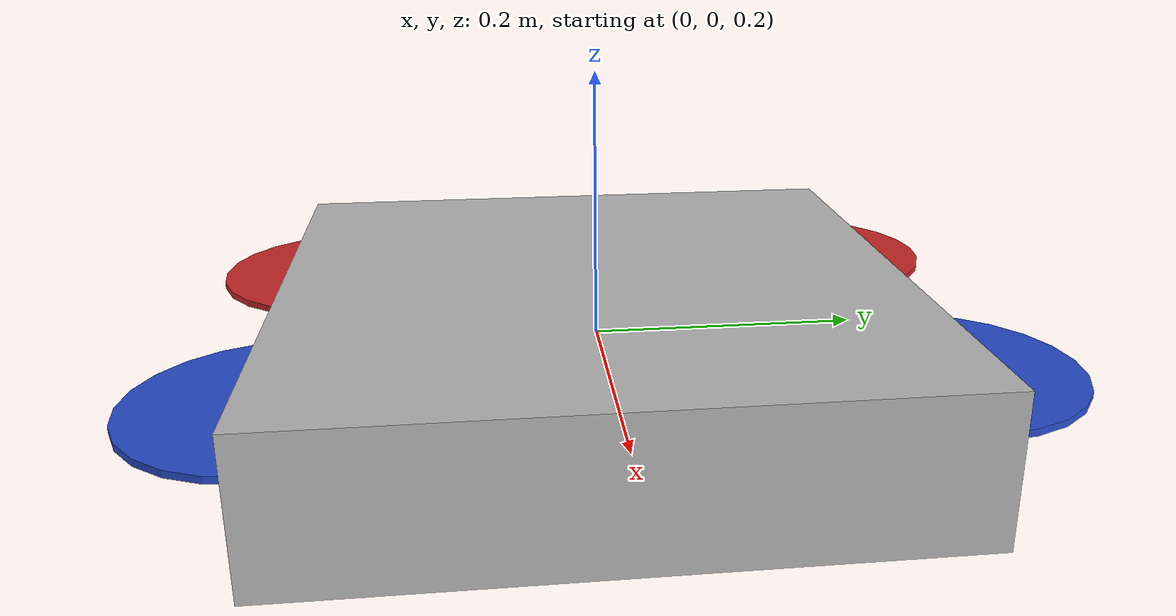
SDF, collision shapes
<sdf version="1.6">
    <model name="x3">
        <pose>0 0 0.19 0 0 0</pose>
        <link name="X3/base_link">
            <enable_wind>true</enable_wind>
            <pose frame="">0 0 0 0 -0 0</pose>
            <inertial>
                <pose frame="">0 0 0 0 -0 0</pose>
                <mass>1.5</mass>
                <inertia>
                    <ixx>0.0347563</ixx>
                    <ixy>0</ixy>
                    <ixz>0</ixz>
                    <iyy>0.07</iyy>
                    <iyz>0</iyz>
                    <izz>0.0977</izz>
                </inertia>
            </inertial>
            <collision name="X3/base_link_inertia_collision">
                <pose frame="">0 0 0 0 -0 0</pose>
                <geometry>
                    <box>
                        <size>0.47 0.47 0.11</size>
                    </box>
                </geometry>
            </collision>
            <visual name="X3/base_link_inertia_visual">
                <pose frame="">0 0 0 0 -0 0</pose>
                <geometry>
                    <mesh>
                        <scale>1 1 1</scale>
                        <uri>https://fuel.gazebosim.org/1.0/openrobotics/models/x3 uav/4/files/meshes/x3.dae</uri>
                    </mesh>
                </geometry>
            </visual>
            <sensor name="imu_sensor" type="imu">
                <always_on>1</always_on>
                <update_rate>250</update_rate>
                <topic>X3/imu</topic>
            </sensor>
            <sensor name="navsat_sensor" type="navsat">
                <always_on>1</always_on>
                <update_rate>10</update_rate>
                <topic>X3/navsat</topic>
            </sensor>
            <sensor name="magnetometer_sensor" type="magnetometer">
                <always_on>1</always_on>
                <update_rate>50</update_rate>
                <topic>X3/magnetometer</topic>
            </sensor>
            <sensor name="air_pressure_sensor" type="air_pressure">
                <always_on>1</always_on>
                <update_rate>50</update_rate>
                <topic>X3/air_pressure</topic>
                <air_pressure>
                    <reference_altitude>30.0</reference_altitude>
                </air_pressure>
            </sensor>

            <sensor name="cam_down" type="camera">
                <always_on>1</always_on>
                <update_rate>40</update_rate>
                <topic>X3/cam_down/image</topic>
                <pose>0 0 0.02 0 1.5707963 0</pose>
                <camera>
                    <horizontal_fov>1.5707963</horizontal_fov>
                    <image>
                        <width>640</width>
                        <height>480</height>
                        <format>R8G8B8</format>
                    </image>
                    <clip>
                        <near>0.01</near>
                        <far>100</far>
                    </clip>
                </camera>
            </sensor>

            <sensor name="cam_up" type="camera">
                <always_on>1</always_on>
                <update_rate>30</update_rate>
                <topic>X3/cam_up/image</topic>
                <pose>0 0 0.03 0 -1.5707963 0</pose>
                <camera>
                    <horizontal_fov>1.9198622</horizontal_fov>
                    <image>
                        <width>640</width>
                        <height>480</height>
                        <format>R8G8B8</format>
                    </image>
                    <clip>
                        <near>0.01</near>
                        <far>300</far>
                    </clip>
                </camera>
            </sensor>

            <sensor name="cam_fpv45" type="camera">
                <always_on>1</always_on>
                <update_rate>30</update_rate>
                <topic>X3/cam_fpv45/image</topic>
                <pose>0.08 0 0.01 0 -0.7853982 0</pose>
                <camera>
                    <horizontal_fov>1.7453293</horizontal_fov>
                    <image>
                        <width>640</width>
                        <height>480</height>
                        <format>R8G8B8</format>
                    </image>
                    <clip>
                        <near>0.01</near>
                        <far>300</far>
                    </clip>
                </camera>
            </sensor>

            <sensor name="cam_track_up" type="camera">
                <always_on>1</always_on>
                <update_rate>20</update_rate>
                <topic>X3/cam_track_up/image</topic>
                <pose>0 0 0.03 0 -1.5707963 0</pose>
                <camera>
                    <horizontal_fov>1.9198622</horizontal_fov>
                    <image>
                        <width>160</width>
                        <height>120</height>
                        <format>R8G8B8</format>
                    </image>
                    <clip>
                        <near>0.01</near>
                        <far>300</far>
                    </clip>
                </camera>
            </sensor>
            <sensor name="cam_track_45" type="camera">
                <always_on>1</always_on>
                <update_rate>20</update_rate>
                <topic>X3/cam_track_45/image</topic>
                <pose>0.08 0 0.01 0 -0.7853982 0</pose>
                <camera>
                    <horizontal_fov>1.7453293</horizontal_fov>
                    <image>
                        <width>160</width>
                        <height>120</height>
                        <format>R8G8B8</format>
                    </image>
                    <clip>
                        <near>0.01</near>
                        <far>300</far>
                    </clip>
                </camera>
            </sensor>
        </link>
        <link name="X3/rotor_0">
            <pose frame="">0.13 -0.22 0.023 0 -0 0</pose>
            <inertial>
                <pose frame="">0 0 0 0 -0 0</pose>
                <mass>0.005</mass>
                <inertia>
                    <ixx>9.75e-07</ixx>
                    <ixy>0</ixy>
                    <ixz>0</ixz>
                    <iyy>4.17041e-05</iyy>
                    <iyz>0</iyz>
                    <izz>4.26041e-05</izz>
                </inertia>
            </inertial>
            <collision name="X3/rotor_0_collision">
                <pose frame="">0 0 0 0 -0 0</pose>
                <geometry>
                    <cylinder>
                        <length>0.005</length>
                        <radius>0.1</radius>
                    </cylinder>
                </geometry>
                <surface>
                    <contact>
                        <ode/>
                    </contact>
                    <friction>
                        <ode/>
                    </friction>
                </surface>
            </collision>
            <visual name="X3/rotor_0_visual">
                <pose frame="">0 0 0 0 -0 0</pose>
                <geometry>
                    <mesh>
                        <scale>0.1 0.1 0.1</scale>
                        <uri>https://fuel.gazebosim.org/1.0/openrobotics/models/x3 uav/4/files/meshes/propeller_ccw.dae</uri>
                    </mesh>
                </geometry>
                <material>
                    <script>
                        <name>Gazebo/Blue</name>
                        <uri>file://media/materials/scripts/gazebo.material</uri>
                    </script>
                </material>
            </visual>
            <gravity>1</gravity>
            <velocity_decay/>
        </link>
        <joint name="X3/rotor_0_joint" type="revolute">
            <child>X3/rotor_0</child>
            <parent>X3/base_link</parent>
            <axis>
                <xyz>0 0 1</xyz>
                <limit>
                    <lower>-1e+16</lower>
                    <upper>1e+16</upper>
                </limit>
                <dynamics>
                    <spring_reference>0</spring_reference>
                    <spring_stiffness>0</spring_stiffness>
                </dynamics>
                <use_parent_model_frame>1</use_parent_model_frame>
            </axis>
        </joint>
        <link name="X3/rotor_1">
            <pose frame="">-0.13 0.2 0.023 0 -0 0</pose>
            <inertial>
                <pose frame="">0 0 0 0 -0 0</pose>
                <mass>0.005</mass>
                <inertia>
                    <ixx>9.75e-07</ixx>
                    <ixy>0</ixy>
                    <ixz>0</ixz>
                    <iyy>4.17041e-05</iyy>
                    <iyz>0</iyz>
                    <izz>4.26041e-05</izz>
                </inertia>
            </inertial>
            <collision name="X3/rotor_1_collision">
                <pose frame="">0 0 0 0 -0 0</pose>
                <geometry>
                    <cylinder>
                        <length>0.005</length>
                        <radius>0.1</radius>
                    </cylinder>
                </geometry>
                <surface>
                    <contact>
                        <ode/>
                    </contact>
                    <friction>
                        <ode/>
                    </friction>
                </surface>
            </collision>
            <visual name="X3/rotor_1_visual">
                <pose frame="">0 0 0 0 -0 0</pose>
                <geometry>
                    <mesh>
                        <scale>0.1 0.1 0.1</scale>
                        <uri>https://fuel.gazebosim.org/1.0/openrobotics/models/x3 uav/4/files/meshes/propeller_ccw.dae</uri>
                    </mesh>
                </geometry>
                <material>
                    <script>
                        <name>Gazebo/Red</name>
                        <uri>file://media/materials/scripts/gazebo.material</uri>
                    </script>
                </material>
            </visual>
            <gravity>1</gravity>
            <velocity_decay/>
        </link>
        <joint name="X3/rotor_1_joint" type="revolute">
            <child>X3/rotor_1</child>
            <parent>X3/base_link</parent>
            <axis>
                <xyz>0 0 1</xyz>
                <limit>
                    <lower>-1e+16</lower>
                    <upper>1e+16</upper>
                </limit>
                <dynamics>
                    <spring_reference>0</spring_reference>
                    <spring_stiffness>0</spring_stiffness>
                </dynamics>
                <use_parent_model_frame>1</use_parent_model_frame>
            </axis>
        </joint>
        <link name="X3/rotor_2">
            <pose frame="">0.13 0.22 0.023 0 -0 0</pose>
            <inertial>
                <pose frame="">0 0 0 0 -0 0</pose>
                <mass>0.005</mass>
                <inertia>
                    <ixx>9.75e-07</ixx>
                    <ixy>0</ixy>
                    <ixz>0</ixz>
                    <iyy>4.17041e-05</iyy>
                    <iyz>0</iyz>
                    <izz>4.26041e-05</izz>
                </inertia>
            </inertial>
            <collision name="X3/rotor_2_collision">
                <pose frame="">0 0 0 0 -0 0</pose>
                <geometry>
                    <cylinder>
                        <length>0.005</length>
                        <radius>0.1</radius>
                    </cylinder>
                </geometry>
                <surface>
                    <contact>
                        <ode/>
                    </contact>
                    <friction>
                        <ode/>
                    </friction>
                </surface>
            </collision>
            <visual name="X3/rotor_2_visual">
                <pose frame="">0 0 0 0 -0 0</pose>
                <geometry>
                    <mesh>
                        <scale>0.1 0.1 0.1</scale>
                        <uri>https://fuel.gazebosim.org/1.0/openrobotics/models/x3 uav/4/files/meshes/propeller_cw.dae</uri>
                    </mesh>
                </geometry>
                <material>
                    <script>
                        <name>Gazebo/Blue</name>
                        <uri>file://media/materials/scripts/gazebo.material</uri>
                    </script>
                </material>
            </visual>
            <gravity>1</gravity>
            <velocity_decay/>
        </link>
        <joint name="X3/rotor_2_joint" type="revolute">
            <child>X3/rotor_2</child>
            <parent>X3/base_link</parent>
            <axis>
                <xyz>0 0 1</xyz>
                <limit>
                    <lower>-1e+16</lower>
                    <upper>1e+16</upper>
                </limit>
                <dynamics>
                    <spring_reference>0</spring_reference>
                    <spring_stiffness>0</spring_stiffness>
                </dynamics>
                <use_parent_model_frame>1</use_parent_model_frame>
            </axis>
        </joint>
        <link name="X3/rotor_3">
            <pose frame="">-0.13 -0.2 0.023 0 -0 0</pose>
            <inertial>
                <pose frame="">0 0 0 0 -0 0</pose>
                <mass>0.005</mass>
                <inertia>
                    <ixx>9.75e-07</ixx>
                    <ixy>0</ixy>
                    <ixz>0</ixz>
                    <iyy>4.17041e-05</iyy>
                    <iyz>0</iyz>
                    <izz>4.26041e-05</izz>
                </inertia>
            </inertial>
            <collision name="X3/rotor_3_collision">
                <pose frame="">0 0 0 0 -0 0</pose>
                <geometry>
                    <cylinder>
                        <length>0.005</length>
                        <radius>0.1</radius>
                    </cylinder>
                </geometry>
                <surface>
                    <contact>
                        <ode/>
                    </contact>
                    <friction>
                        <ode/>
                    </friction>
                </surface>
            </collision>
            <visual name="X3/rotor_3_visual">
                <pose frame="">0 0 0 0 -0 0</pose>
                <geometry>
                    <mesh>
                        <scale>0.1 0.1 0.1</scale>
                        <uri>https://fuel.gazebosim.org/1.0/openrobotics/models/x3 uav/4/files/meshes/propeller_cw.dae</uri>
                    </mesh>
                </geometry>
                <material>
                    <script>
                        <name>Gazebo/Red</name>
                        <uri>file://media/materials/scripts/gazebo.material</uri>
                    </script>
                </material>
            </visual>
            <gravity>1</gravity>
            <velocity_decay/>
        </link>
        <joint name="X3/rotor_3_joint" type="revolute">
            <child>X3/rotor_3</child>
            <parent>X3/base_link</parent>
            <axis>
                <xyz>0 0 1</xyz>
                <limit>
                    <lower>-1e+16</lower>
                    <upper>1e+16</upper>
                </limit>
                <dynamics>
                    <spring_reference>0</spring_reference>
                    <spring_stiffness>0</spring_stiffness>
                </dynamics>
                <use_parent_model_frame>1</use_parent_model_frame>
            </axis>
        </joint>
    </model>
</sdf>
